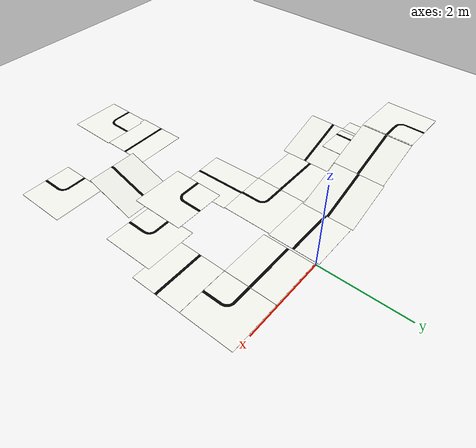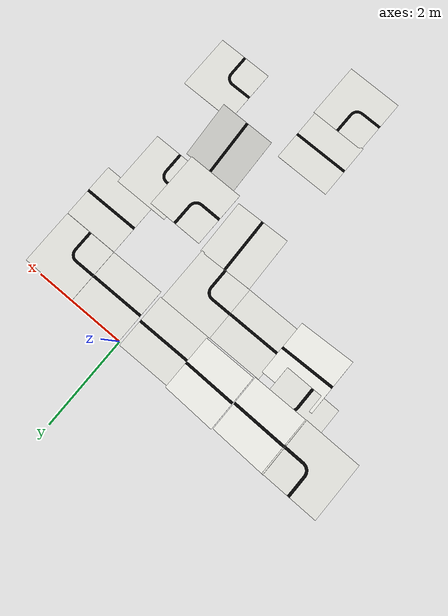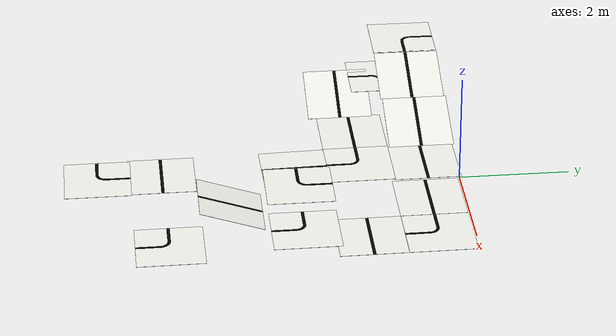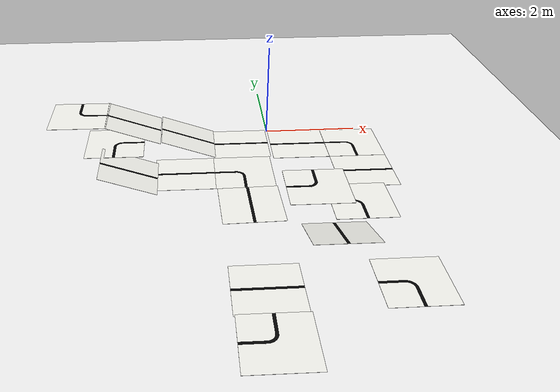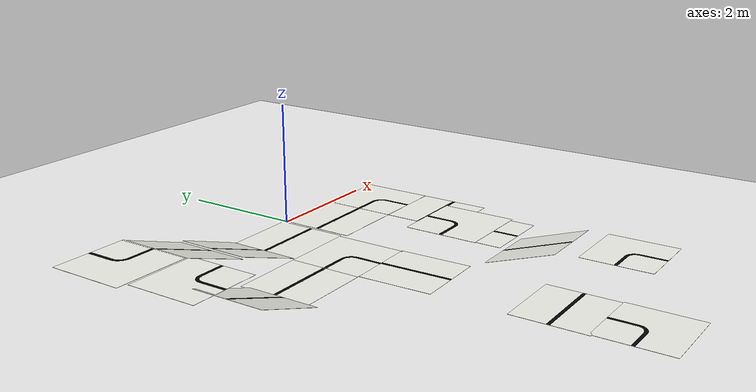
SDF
<sdf version='1.7'>
  <world name='default'>
    <!-- Iluminacao Zenital Sem Sombras (Piso Claro e Linhas Pretas de Alto Contraste) -->
    <light name='sun' type='directional'>
      <cast_shadows>0</cast_shadows>
      <pose>0 0 20 0 0 0</pose>
      <diffuse>0.95 0.95 0.95 1</diffuse>
      <specular>0.05 0.05 0.05 1</specular>
      <attenuation>
        <range>1000</range>
        <constant>0.9</constant>
        <linear>0.01</linear>
        <quadratic>0.001</quadratic>
      </attenuation>
      <direction>0 0 -1</direction>
    </light>

    <!-- Fundo Branco Total (Sky / Horizon) -->
    <scene>
      <ambient>0.95 0.95 0.95 1</ambient>
      <background>1 1 1 1</background>
      <shadows>0</shadows>
      <grid>0</grid>
    </scene>

    <!-- Chao Branco Total (Gazebo/White) para Contraste Maximo com as Linhas Pretas -->
    <model name='ground_plane'>
      <static>1</static>
      <link name='link'>
        <collision name='collision'>
          <geometry>
            <plane>
              <normal>0 0 1</normal>
              <size>200 200</size>
            </plane>
          </geometry>
          <surface>
            <contact><collide_bitmask>65535</collide_bitmask><ode/></contact>
            <friction>
              <ode><mu>100</mu><mu2>50</mu2></ode>
              <torsional><ode/></torsional>
            </friction>
            <bounce/>
          </surface>
        </collision>
        <visual name='visual'>
          <cast_shadows>0</cast_shadows>
          <geometry>
            <plane>
              <normal>0 0 1</normal>
              <size>200 200</size>
            </plane>
          </geometry>
          <material>
            <script>
              <uri>file://media/materials/scripts/gazebo.material</uri>
              <name>Gazebo/White</name>
            </script>
            <ambient>1 1 1 1</ambient>
            <diffuse>1 1 1 1</diffuse>
            <specular>0.05 0.05 0.05 1</specular>
          </material>
        </visual>
      </link>
    </model>

    <gravity>0 0 -9.8</gravity>
    <magnetic_field>6e-06 2.3e-05 -4.2e-05</magnetic_field>
    <atmosphere type='adiabatic'/>
    <physics type='ode'>
      <max_step_size>0.001</max_step_size>
      <real_time_factor>1</real_time_factor>
      <real_time_update_rate>1000</real_time_update_rate>
    </physics>
    <audio><device>none</device></audio>

    <model name='tile_reta'>
      <static>1</static>
      <link name='link'>
        <visual name='visual'>
          <pose>0 0 0 1.5708 -0 0</pose>
          <geometry>
            <mesh>
              <uri>/workspace/tiles/tile-reta/meshes/tile_reta.dae</uri>
              <scale>4.0 1 4.0</scale>
            </mesh>
          </geometry>
        </visual>
        <collision name='collision'>
          <geometry>
            <box>
              <size>1.20 1.20 0.003</size>
            </box>
          </geometry>
          <surface>
            <contact><ode/></contact>
            <friction>
              <ode><mu>100</mu><mu2>50</mu2></ode>
              <torsional><ode/></torsional>
            </friction>
          </surface>
        </collision>
      </link>
      <pose>0.0090 -0.0292 0.0000 0.0000 -0.0000 0.000000</pose>
    </model>

    <model name='tile_curva'>
      <static>1</static>
      <link name='link'>
        <visual name='visual'>
          <pose>0 0 0 1.5708 -0 0</pose>
          <geometry>
            <mesh>
              <uri>/workspace/tiles/tile-curva/meshes/tile_curva.dae</uri>
              <scale>4.0 1 4.0</scale>
            </mesh>
          </geometry>
        </visual>
        <collision name='collision'>
          <geometry>
            <box>
              <size>1.20 1.20 0.003</size>
            </box>
          </geometry>
          <surface>
            <contact><ode/></contact>
            <friction>
              <ode><mu>100</mu><mu2>50</mu2></ode>
              <torsional><ode/></torsional>
            </friction>
          </surface>
        </collision>
      </link>
      <pose>1.2119 -0.0274 0.0000 0.0000 -0.0000 0.000000</pose>
    </model>

    <model name='tile_reta_0'>
      <static>1</static>
      <link name='link'>
        <visual name='visual'>
          <pose>0 0 0 1.5708 -0 0</pose>
          <geometry>
            <mesh>
              <uri>/workspace/tiles/tile-reta/meshes/tile_reta.dae</uri>
              <scale>4.0 1 4.0</scale>
            </mesh>
          </geometry>
        </visual>
        <collision name='collision'>
          <geometry>
            <box>
              <size>1.20 1.20 0.003</size>
            </box>
          </geometry>
          <surface>
            <contact><ode/></contact>
            <friction>
              <ode><mu>100</mu><mu2>50</mu2></ode>
              <torsional><ode/></torsional>
            </friction>
          </surface>
        </collision>
      </link>
      <pose>1.2100 -1.2307 0.0000 0.0000 -0.0000 0.000000</pose>
    </model>

    <model name='tile_curva_0'>
      <static>1</static>
      <link name='link'>
        <visual name='visual'>
          <pose>0 0 0 1.5708 -0 0</pose>
          <geometry>
            <mesh>
              <uri>/workspace/tiles/tile-curva/meshes/tile_curva.dae</uri>
              <scale>4.0 1 4.0</scale>
            </mesh>
          </geometry>
        </visual>
        <collision name='collision'>
          <geometry>
            <box>
              <size>1.20 1.20 0.003</size>
            </box>
          </geometry>
          <surface>
            <contact><ode/></contact>
            <friction>
              <ode><mu>100</mu><mu2>50</mu2></ode>
              <torsional><ode/></torsional>
            </friction>
          </surface>
        </collision>
      </link>
      <pose>0.8836 -2.3378 0.0000 0.0000 -0.0000 0.000000</pose>
    </model>

    <model name='tile_curva_0_clone'>
      <static>1</static>
      <link name='link'>
        <visual name='visual'>
          <pose>0 0 0 1.5708 -0 0</pose>
          <geometry>
            <mesh>
              <uri>/workspace/tiles/tile-curva/meshes/tile_curva.dae</uri>
              <scale>4.0 1 4.0</scale>
            </mesh>
          </geometry>
        </visual>
        <collision name='collision'>
          <geometry>
            <box>
              <size>1.20 1.20 0.003</size>
            </box>
          </geometry>
          <surface>
            <contact><ode/></contact>
            <friction>
              <ode><mu>100</mu><mu2>50</mu2></ode>
              <torsional><ode/></torsional>
            </friction>
          </surface>
        </collision>
      </link>
      <pose>1.2111 -2.3750 0.3799 0.0000 0.0000 -1.576510</pose>
    </model>

    <model name='tile_reta_0_clone'>
      <static>1</static>
      <link name='link'>
        <visual name='visual'>
          <pose>0 0 0 1.5708 -0 0</pose>
          <geometry>
            <mesh>
              <uri>/workspace/tiles/tile-reta/meshes/tile_reta.dae</uri>
              <scale>4.0 1 4.0</scale>
            </mesh>
          </geometry>
        </visual>
        <collision name='collision'>
          <geometry>
            <box>
              <size>1.20 1.20 0.003</size>
            </box>
          </geometry>
          <surface>
            <contact><ode/></contact>
            <friction>
              <ode><mu>100</mu><mu2>50</mu2></ode>
              <torsional><ode/></torsional>
            </friction>
          </surface>
        </collision>
      </link>
      <pose>1.4111 -3.6356 -0.0000 0.0000 -0.3251 -1.576180</pose>
    </model>

    <model name='tile_curva_clone'>
      <static>1</static>
      <link name='link'>
        <visual name='visual'>
          <pose>0 0 0 1.5708 -0 0</pose>
          <geometry>
            <mesh>
              <uri>/workspace/tiles/tile-curva/meshes/tile_curva.dae</uri>
              <scale>4.0 1 4.0</scale>
            </mesh>
          </geometry>
        </visual>
        <collision name='collision'>
          <geometry>
            <box>
              <size>1.20 1.20 0.003</size>
            </box>
          </geometry>
          <surface>
            <contact><ode/></contact>
            <friction>
              <ode><mu>100</mu><mu2>50</mu2></ode>
              <torsional><ode/></torsional>
            </friction>
          </surface>
        </collision>
      </link>
      <pose>1.1896 -4.7215 0.0000 0.0000 -0.0000 0.000000</pose>
    </model>

    <model name='tile_curva_clone_clone'>
      <static>1</static>
      <link name='link'>
        <visual name='visual'>
          <pose>0 0 0 1.5708 -0 0</pose>
          <geometry>
            <mesh>
              <uri>/workspace/tiles/tile-curva/meshes/tile_curva.dae</uri>
              <scale>4.0 1 4.0</scale>
            </mesh>
          </geometry>
        </visual>
        <collision name='collision'>
          <geometry>
            <box>
              <size>1.20 1.20 0.003</size>
            </box>
          </geometry>
          <surface>
            <contact><ode/></contact>
            <friction>
              <ode><mu>100</mu><mu2>50</mu2></ode>
              <torsional><ode/></torsional>
            </friction>
          </surface>
        </collision>
      </link>
      <pose>0.0134 -5.9160 0.0000 0.0000 0.0000 -1.577200</pose>
    </model>

    <model name='tile_reta_1'>
      <static>1</static>
      <link name='link'>
        <visual name='visual'>
          <pose>0 0 0 1.5708 -0 0</pose>
          <geometry>
            <mesh>
              <uri>/workspace/tiles/tile-reta/meshes/tile_reta.dae</uri>
              <scale>4.0 1 4.0</scale>
            </mesh>
          </geometry>
        </visual>
        <collision name='collision'>
          <geometry>
            <box>
              <size>1.20 1.20 0.003</size>
            </box>
          </geometry>
          <surface>
            <contact><ode/></contact>
            <friction>
              <ode><mu>100</mu><mu2>50</mu2></ode>
              <torsional><ode/></torsional>
            </friction>
          </surface>
        </collision>
      </link>
      <pose>-1.2126 -4.7503 0.0000 0.0000 -0.0000 0.000000</pose>
    </model>

    <model name='tile_reta_1_clone'>
      <static>1</static>
      <link name='link'>
        <visual name='visual'>
          <pose>0 0 0 1.5708 -0 0</pose>
          <geometry>
            <mesh>
              <uri>/workspace/tiles/tile-reta/meshes/tile_reta.dae</uri>
              <scale>4.0 1 4.0</scale>
            </mesh>
          </geometry>
        </visual>
        <collision name='collision'>
          <geometry>
            <box>
              <size>1.20 1.20 0.003</size>
            </box>
          </geometry>
          <surface>
            <contact><ode/></contact>
            <friction>
              <ode><mu>100</mu><mu2>50</mu2></ode>
              <torsional><ode/></torsional>
            </friction>
          </surface>
        </collision>
      </link>
      <pose>-1.2237 -3.5522 0.0000 0.0000 -0.0000 1.596600</pose>
    </model>

    <model name='tile_curva_clone_0'>
      <static>1</static>
      <link name='link'>
        <visual name='visual'>
          <pose>0 0 0 1.5708 -0 0</pose>
          <geometry>
            <mesh>
              <uri>/workspace/tiles/tile-curva/meshes/tile_curva.dae</uri>
              <scale>4.0 1 4.0</scale>
            </mesh>
          </geometry>
        </visual>
        <collision name='collision'>
          <geometry>
            <box>
              <size>1.20 1.20 0.003</size>
            </box>
          </geometry>
          <surface>
            <contact><ode/></contact>
            <friction>
              <ode><mu>100</mu><mu2>50</mu2></ode>
              <torsional><ode/></torsional>
            </friction>
          </surface>
        </collision>
      </link>
      <pose>-1.2749 -1.1496 0.0000 0.0000 -0.0000 0.000000</pose>
    </model>

    <model name='tile_reta_clone'>
      <static>1</static>
      <link name='link'>
        <visual name='visual'>
          <pose>0 0 0 1.5708 -0 0</pose>
          <geometry>
            <mesh>
              <uri>/workspace/tiles/tile-reta/meshes/tile_reta.dae</uri>
              <scale>4.0 1 4.0</scale>
            </mesh>
          </geometry>
        </visual>
        <collision name='collision'>
          <geometry>
            <box>
              <size>1.20 1.20 0.003</size>
            </box>
          </geometry>
          <surface>
            <contact><ode/></contact>
            <friction>
              <ode><mu>100</mu><mu2>50</mu2></ode>
              <torsional><ode/></torsional>
            </friction>
          </surface>
        </collision>
      </link>
      <pose>-2.4716 -1.1515 0.0000 0.0000 -0.0000 0.000000</pose>
    </model>

    <model name='tile_reta_clone_clone'>
      <static>1</static>
      <link name='link'>
        <visual name='visual'>
          <pose>0 0 0 1.5708 -0 0</pose>
          <geometry>
            <mesh>
              <uri>/workspace/tiles/tile-reta/meshes/tile_reta.dae</uri>
              <scale>4.0 1 4.0</scale>
            </mesh>
          </geometry>
        </visual>
        <collision name='collision'>
          <geometry>
            <box>
              <size>1.20 1.20 0.003</size>
            </box>
          </geometry>
          <surface>
            <contact><ode/></contact>
            <friction>
              <ode><mu>100</mu><mu2>50</mu2></ode>
              <torsional><ode/></torsional>
            </friction>
          </surface>
        </collision>
      </link>
      <pose>-2.4376 -2.5004 0.0000 0.0000 -0.3400 3.137620</pose>
    </model>

    <model name='tile_curva_0_clone_clone'>
      <static>1</static>
      <link name='link'>
        <visual name='visual'>
          <pose>0 0 0 1.5708 -0 0</pose>
          <geometry>
            <mesh>
              <uri>/workspace/tiles/tile-curva/meshes/tile_curva.dae</uri>
              <scale>4.0 1 4.0</scale>
            </mesh>
          </geometry>
        </visual>
        <collision name='collision'>
          <geometry>
            <box>
              <size>1.20 1.20 0.003</size>
            </box>
          </geometry>
          <surface>
            <contact><ode/></contact>
            <friction>
              <ode><mu>100</mu><mu2>50</mu2></ode>
              <torsional><ode/></torsional>
            </friction>
          </surface>
        </collision>
      </link>
      <pose>-3.9128 -1.6485 0.3799 0.0000 -0.0000 1.564590</pose>
    </model>

    <model name='tile_curva_0_clone_clone_clone'>
      <static>1</static>
      <link name='link'>
        <visual name='visual'>
          <pose>0 0 0 1.5708 -0 0</pose>
          <geometry>
            <mesh>
              <uri>/workspace/tiles/tile-curva/meshes/tile_curva.dae</uri>
              <scale>4.0 1 4.0</scale>
            </mesh>
          </geometry>
        </visual>
        <collision name='collision'>
          <geometry>
            <box>
              <size>1.20 1.20 0.003</size>
            </box>
          </geometry>
          <surface>
            <contact><ode/></contact>
            <friction>
              <ode><mu>100</mu><mu2>50</mu2></ode>
              <torsional><ode/></torsional>
            </friction>
          </surface>
        </collision>
      </link>
      <pose>-3.4818 -1.1418 0.7795 0.0000 -0.0000 3.129650</pose>
    </model>

    <model name='tile_reta_clone_clone_clone'>
      <static>1</static>
      <link name='link'>
        <visual name='visual'>
          <pose>0 0 0 1.5708 -0 0</pose>
          <geometry>
            <mesh>
              <uri>/workspace/tiles/tile-reta/meshes/tile_reta.dae</uri>
              <scale>4.0 1 4.0</scale>
            </mesh>
          </geometry>
        </visual>
        <collision name='collision'>
          <geometry>
            <box>
              <size>1.20 1.20 0.003</size>
            </box>
          </geometry>
          <surface>
            <contact><ode/></contact>
            <friction>
              <ode><mu>100</mu><mu2>50</mu2></ode>
              <torsional><ode/></torsional>
            </friction>
          </surface>
        </collision>
      </link>
      <pose>-2.3742 -1.1407 0.3810 0.0000 -0.3400 3.137620</pose>
    </model>

    <model name='tile_reta_clone_clone_0'>
      <static>1</static>
      <link name='link'>
        <visual name='visual'>
          <pose>0 0 0 1.5708 -0 0</pose>
          <geometry>
            <mesh>
              <uri>/workspace/tiles/tile-reta/meshes/tile_reta.dae</uri>
              <scale>4.0 1 4.0</scale>
            </mesh>
          </geometry>
        </visual>
        <collision name='collision'>
          <geometry>
            <box>
              <size>1.20 1.20 0.003</size>
            </box>
          </geometry>
          <surface>
            <contact><ode/></contact>
            <friction>
              <ode><mu>100</mu><mu2>50</mu2></ode>
              <torsional><ode/></torsional>
            </friction>
          </surface>
        </collision>
      </link>
      <pose>-1.2224 -1.1176 0.0000 0.0000 -0.3400 3.137620</pose>
    </model>

    <model name='tile_reta_clone_0'>
      <static>1</static>
      <link name='link'>
        <visual name='visual'>
          <pose>0 0 0 1.5708 -0 0</pose>
          <geometry>
            <mesh>
              <uri>/workspace/tiles/tile-reta/meshes/tile_reta.dae</uri>
              <scale>4.0 1 4.0</scale>
            </mesh>
          </geometry>
        </visual>
        <collision name='collision'>
          <geometry>
            <box>
              <size>1.20 1.20 0.003</size>
            </box>
          </geometry>
          <surface>
            <contact><ode/></contact>
            <friction>
              <ode><mu>100</mu><mu2>50</mu2></ode>
              <torsional><ode/></torsional>
            </friction>
          </surface>
        </collision>
      </link>
      <pose>-1.2425 0.0464 0.0000 0.0000 -0.0000 0.000000</pose>
    </model>

    <gui fullscreen='0'>
      <camera name='user_camera'>
        <pose>1.0 -4.0 6.0 0 0.8 1.8</pose>
        <view_controller>orbit</view_controller>
        <projection_type>perspective</projection_type>
      </camera>
    </gui>
  </world>
</sdf>
